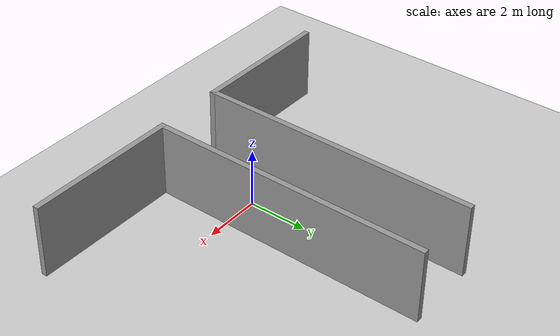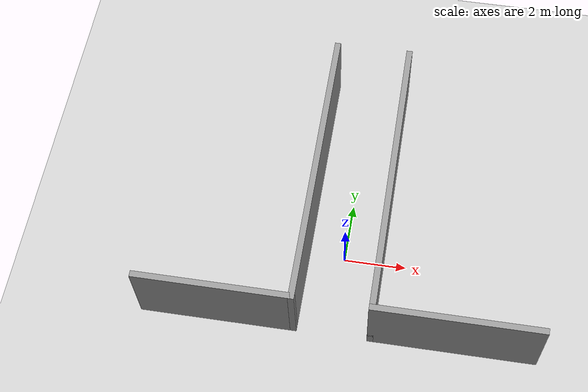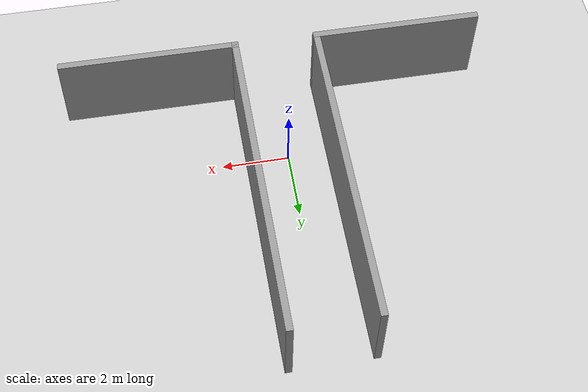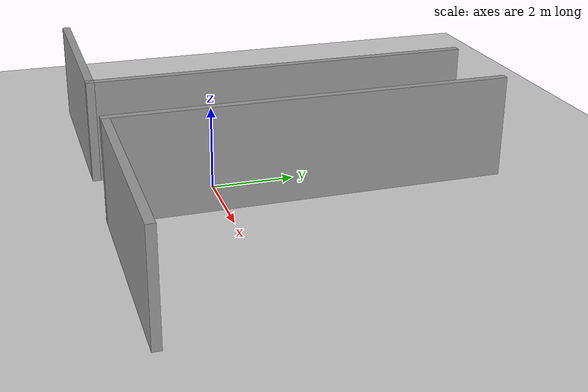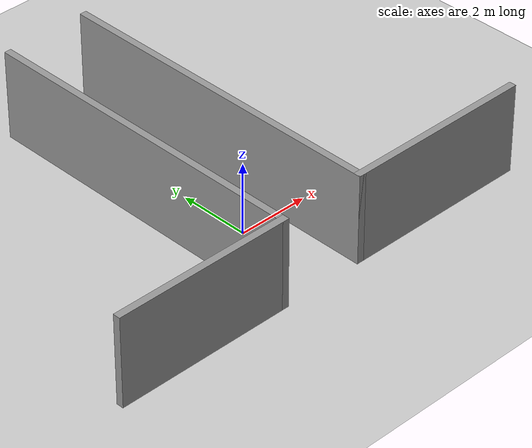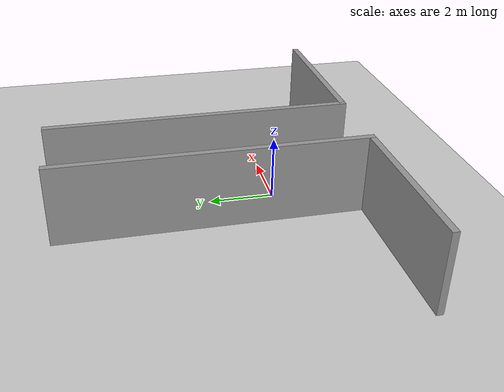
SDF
<sdf version="1.4">
 <world name="default">
  <light name="sun" type="directional">
   <pose>0 0 10 0 -0 0</pose>
   <diffuse>0.8 0.8 0.8 1</diffuse>
   <specular>0.2 0.2 0.2 1</specular>
   <attenuation>
    <range>1000</range>
    <constant>0.9</constant>
    <linear>0.01</linear>
    <quadratic>0.001</quadratic>
   </attenuation>
   <direction>-0.5 0.1 -0.9</direction>
  </light>
  <model name="ground_plane">
   <static>1</static>
   <link name="link">
    <collision name="collision">
     <geometry><plane><normal>0 0 1</normal><size>100 100</size></plane></geometry>
     <surface><friction><ode><mu>100</mu><mu2>50</mu2></ode></friction></surface>
    </collision>
    <visual name="visual">
     <cast_shadows>0</cast_shadows>
     <geometry><plane><normal>0 0 1</normal><size>100 100</size></plane></geometry>
     <material>
      <script><uri>file://media/materials/scripts/gazebo.material</uri><name>Gazebo/Grey</name></script>
     </material>
    </visual>
    <velocity_decay><linear>0</linear><angular>0</angular></velocity_decay>
   </link>
  </model>
  <physics type="ode">
   <max_step_size>0.001</max_step_size>
   <real_time_factor>1</real_time_factor>
   <real_time_update_rate>1000</real_time_update_rate>
   <gravity>0 0 -9.8</gravity>
  </physics>
  <scene><ambient>0.4 0.4 0.4 1</ambient><background>0.7 0.7 0.7 1</background><shadows>1</shadows></scene>
  <spherical_coordinates>
   <surface_model>EARTH_WGS84</surface_model>
   <latitude_deg>0</latitude_deg>
   <longitude_deg>0</longitude_deg>
   <elevation>0</elevation>
   <heading_deg>0</heading_deg>
  </spherical_coordinates>
  <model name="home_env_sim3">
   <link name="Wall_10">
    <collision name="Wall_10_Collision">
     <geometry><box><size>9.60697 0.2 2.5</size></box></geometry>
     <pose>0 0 1.25 0 -0 0</pose>
    </collision>
    <visual name="Wall_10_Visual">
     <pose>0 0 1.25 0 -0 0</pose>
     <geometry><box><size>9.60697 0.2 2.5</size></box></geometry>
     <material>
      <script><uri>file://media/materials/scripts/gazebo.material</uri><name>Gazebo/Grey</name></script>
     </material>
    </visual>
    <velocity_decay><linear>0</linear><angular>0</angular></velocity_decay>
    <pose>-1.27126 2.09866 0 0 0 -1.5708</pose>
   </link>
   <link name="Wall_11">
    <collision name="Wall_11_Collision">
     <geometry><box><size>5.05122 0.2 2.5</size></box></geometry>
     <pose>0 0 1.25 0 -0 0</pose>
    </collision>
    <visual name="Wall_11_Visual">
     <pose>0 0 1.25 0 -0 0</pose>
     <geometry><box><size>5.05122 0.2 2.5</size></box></geometry>
     <material>
      <script><uri>file://media/materials/scripts/gazebo.material</uri><name>Gazebo/Grey</name></script>
     </material>
    </visual>
    <velocity_decay><linear>0</linear><angular>0</angular></velocity_decay>
    <pose>-3.69687 -2.60457 0 0 -0 3.14159</pose>
   </link>
   <link name="Wall_17">
    <collision name="Wall_17_Collision">
     <geometry><box><size>9.6361 0.2 2.5</size></box></geometry>
     <pose>0 0 1.25 0 -0 0</pose>
    </collision>
    <visual name="Wall_17_Visual">
     <pose>0 0 1.25 0 -0 0</pose>
     <geometry><box><size>9.6361 0.2 2.5</size></box></geometry>
     <material>
      <script><uri>file://media/materials/scripts/gazebo.material</uri><name>Gazebo/Grey</name></script>
     </material>
    </visual>
    <velocity_decay><linear>0</linear><angular>0</angular></velocity_decay>
    <pose>1.1826 2.11348 0 0 0 -1.5708</pose>
   </link>
   <link name="Wall_18">
    <collision name="Wall_18_Collision">
     <geometry><box><size>5.35341 0.2 2.5</size></box></geometry>
     <pose>0 0 1.25 0 -0 0</pose>
    </collision>
    <visual name="Wall_18_Visual">
     <pose>0 0 1.25 0 -0 0</pose>
     <geometry><box><size>5.35341 0.2 2.5</size></box></geometry>
     <material>
      <script><uri>file://media/materials/scripts/gazebo.material</uri><name>Gazebo/Grey</name></script>
     </material>
    </visual>
    <velocity_decay><linear>0</linear><angular>0</angular></velocity_decay>
    <pose>3.7593 -2.60457 0 0 -0 0</pose>
   </link>
   <static>1</static>
  </model>
 </world>
</sdf>
